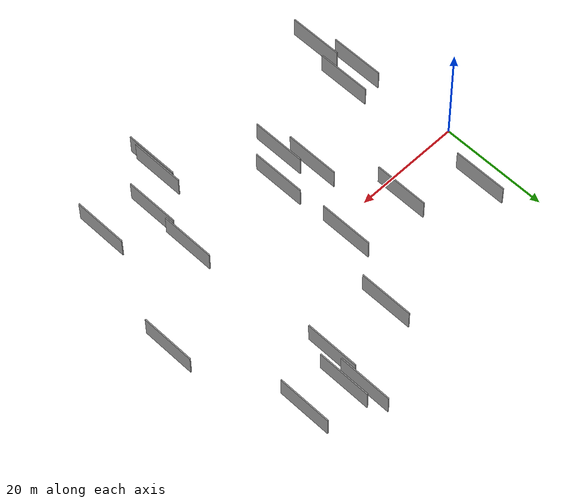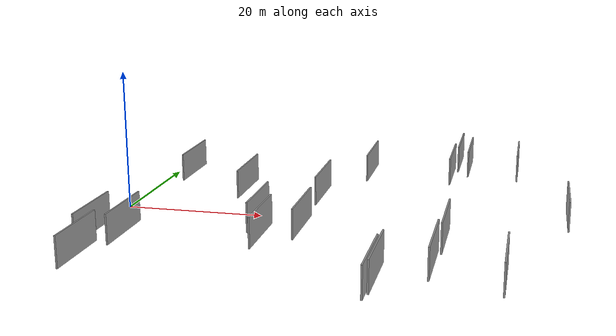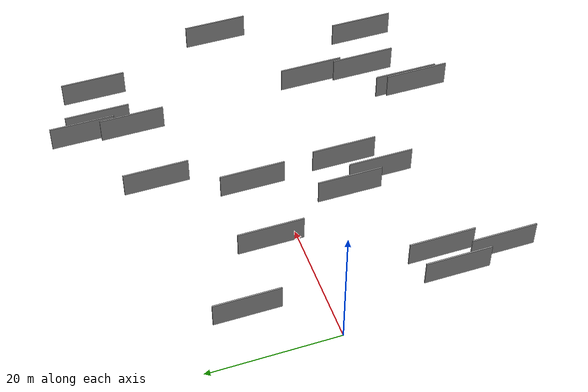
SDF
<sdf version="1.6">
 <world name="default">
  <scene>
   <sky><clouds><speed>12</speed></clouds></sky>
   <ambient>0.4 0.4 0.4 1</ambient>
   <background>0.7 0.7 0.7 1</background>
   <shadows>1</shadows>
  </scene>
  <gravity>0 0 -9.8066</gravity>
  <magnetic_field>6e-06 2.3e-05 -4.2e-05</magnetic_field>
  <physics default="0" name="default_physics" type="ode">
   <ode>
    <solver>
     <type>quick</type>
     <iters>10</iters>
     <sor>1.0</sor>
     <use_dynamic_moi_rescaling>0</use_dynamic_moi_rescaling>
    </solver>
    <constraints>
     <cfm>0</cfm>
     <erp>0.2</erp>
     <contact_max_correcting_vel>100</contact_max_correcting_vel>
     <contact_surface_layer>0.001</contact_surface_layer>
    </constraints>
   </ode>
   <max_step_size>0.004</max_step_size>
   <real_time_factor>1</real_time_factor>
   <real_time_update_rate>250</real_time_update_rate>
  </physics>
  <light name="sun" type="directional">
   <pose>0 0 10 0 0 0</pose>
   <diffuse>0.8 0.8 0.8 1</diffuse>
   <specular>0.2 0.2 0.2 1</specular>
   <attenuation>
    <range>1000</range>
    <constant>0.9</constant>
    <linear>0.01</linear>
    <quadratic>0.001</quadratic>
   </attenuation>
   <direction>-0.5 0.1 -0.9</direction>
  </light>
  <model name="grey_wall_1">
   <static>1</static>
   <pose>40.9652 -26.0209 2.5 0.000000 0.000000 1.570796</pose>
   <link name="link">
    <pose>0 0 2.00 0 0 0</pose>
    <collision name="collision"><geometry><box><size>10.00 0.2 4.00</size></box></geometry></collision>
    <visual name="visual">
     <cast_shadows>0</cast_shadows>
     <geometry><box><size>10.00 0.2 4.00</size></box></geometry>
     <material>
      <script>
       <uri>model://grey_wall/materials/scripts</uri>
       <uri>model://grey_wall/materials/textures</uri>
       <name>vrc/grey_wall</name>
      </script>
     </material>
    </visual>
   </link>
  </model>
  <model name="grey_wall_2">
   <static>1</static>
   <pose>7.0348 -17.4447 2.5 0.000000 0.000000 1.570796</pose>
   <link name="link">
    <pose>0 0 2.00 0 0 0</pose>
    <collision name="collision"><geometry><box><size>10.00 0.2 4.00</size></box></geometry></collision>
    <visual name="visual">
     <cast_shadows>0</cast_shadows>
     <geometry><box><size>10.00 0.2 4.00</size></box></geometry>
     <material>
      <script>
       <uri>model://grey_wall/materials/scripts</uri>
       <uri>model://grey_wall/materials/textures</uri>
       <name>vrc/grey_wall</name>
      </script>
     </material>
    </visual>
   </link>
  </model>
  <model name="grey_wall_3">
   <static>1</static>
   <pose>28.2016 3.8458 2.5 0.000000 0.000000 1.570796</pose>
   <link name="link">
    <pose>0 0 2.00 0 0 0</pose>
    <collision name="collision"><geometry><box><size>10.00 0.2 4.00</size></box></geometry></collision>
    <visual name="visual">
     <cast_shadows>0</cast_shadows>
     <geometry><box><size>10.00 0.2 4.00</size></box></geometry>
     <material>
      <script>
       <uri>model://grey_wall/materials/scripts</uri>
       <uri>model://grey_wall/materials/textures</uri>
       <name>vrc/grey_wall</name>
      </script>
     </material>
    </visual>
   </link>
  </model>
  <model name="grey_wall_4">
   <static>1</static>
   <pose>47.8252 22.6792 2.5 0.000000 0.000000 1.570796</pose>
   <link name="link">
    <pose>0 0 2.00 0 0 0</pose>
    <collision name="collision"><geometry><box><size>10.00 0.2 4.00</size></box></geometry></collision>
    <visual name="visual">
     <cast_shadows>0</cast_shadows>
     <geometry><box><size>10.00 0.2 4.00</size></box></geometry>
     <material>
      <script>
       <uri>model://grey_wall/materials/scripts</uri>
       <uri>model://grey_wall/materials/textures</uri>
       <name>vrc/grey_wall</name>
      </script>
     </material>
    </visual>
   </link>
  </model>
  <model name="grey_wall_5">
   <static>1</static>
   <pose>55.2218 21.6221 2.5 0.000000 0.000000 1.570796</pose>
   <link name="link">
    <pose>0 0 2.00 0 0 0</pose>
    <collision name="collision"><geometry><box><size>10.00 0.2 4.00</size></box></geometry></collision>
    <visual name="visual">
     <cast_shadows>0</cast_shadows>
     <geometry><box><size>10.00 0.2 4.00</size></box></geometry>
     <material>
      <script>
       <uri>model://grey_wall/materials/scripts</uri>
       <uri>model://grey_wall/materials/textures</uri>
       <name>vrc/grey_wall</name>
      </script>
     </material>
    </visual>
   </link>
  </model>
  <model name="grey_wall_6">
   <static>1</static>
   <pose>46.8211 -20.9264 2.5 0.000000 0.000000 1.570796</pose>
   <link name="link">
    <pose>0 0 2.00 0 0 0</pose>
    <collision name="collision"><geometry><box><size>10.00 0.2 4.00</size></box></geometry></collision>
    <visual name="visual">
     <cast_shadows>0</cast_shadows>
     <geometry><box><size>10.00 0.2 4.00</size></box></geometry>
     <material>
      <script>
       <uri>model://grey_wall/materials/scripts</uri>
       <uri>model://grey_wall/materials/textures</uri>
       <name>vrc/grey_wall</name>
      </script>
     </material>
    </visual>
   </link>
  </model>
  <model name="grey_wall_7">
   <static>1</static>
   <pose>3.1076 -18.2592 2.5 0.000000 0.000000 1.570796</pose>
   <link name="link">
    <pose>0 0 2.00 0 0 0</pose>
    <collision name="collision"><geometry><box><size>10.00 0.2 4.00</size></box></geometry></collision>
    <visual name="visual">
     <cast_shadows>0</cast_shadows>
     <geometry><box><size>10.00 0.2 4.00</size></box></geometry>
     <material>
      <script>
       <uri>model://grey_wall/materials/scripts</uri>
       <uri>model://grey_wall/materials/textures</uri>
       <name>vrc/grey_wall</name>
      </script>
     </material>
    </visual>
   </link>
  </model>
  <model name="grey_wall_8">
   <static>1</static>
   <pose>45.4688 17.8101 2.5 0.000000 0.000000 1.570796</pose>
   <link name="link">
    <pose>0 0 2.00 0 0 0</pose>
    <collision name="collision"><geometry><box><size>10.00 0.2 4.00</size></box></geometry></collision>
    <visual name="visual">
     <cast_shadows>0</cast_shadows>
     <geometry><box><size>10.00 0.2 4.00</size></box></geometry>
     <material>
      <script>
       <uri>model://grey_wall/materials/scripts</uri>
       <uri>model://grey_wall/materials/textures</uri>
       <name>vrc/grey_wall</name>
      </script>
     </material>
    </visual>
   </link>
  </model>
  <model name="grey_wall_9">
   <static>1</static>
   <pose>33.0896 17.2999 2.5 0.000000 0.000000 1.570796</pose>
   <link name="link">
    <pose>0 0 2.00 0 0 0</pose>
    <collision name="collision"><geometry><box><size>10.00 0.2 4.00</size></box></geometry></collision>
    <visual name="visual">
     <cast_shadows>0</cast_shadows>
     <geometry><box><size>10.00 0.2 4.00</size></box></geometry>
     <material>
      <script>
       <uri>model://grey_wall/materials/scripts</uri>
       <uri>model://grey_wall/materials/textures</uri>
       <name>vrc/grey_wall</name>
      </script>
     </material>
    </visual>
   </link>
  </model>
  <model name="grey_wall_10">
   <static>1</static>
   <pose>4.9232 -26.0384 2.5 0.000000 0.000000 1.570796</pose>
   <link name="link">
    <pose>0 0 2.00 0 0 0</pose>
    <collision name="collision"><geometry><box><size>10.00 0.2 4.00</size></box></geometry></collision>
    <visual name="visual">
     <cast_shadows>0</cast_shadows>
     <geometry><box><size>10.00 0.2 4.00</size></box></geometry>
     <material>
      <script>
       <uri>model://grey_wall/materials/scripts</uri>
       <uri>model://grey_wall/materials/textures</uri>
       <name>vrc/grey_wall</name>
      </script>
     </material>
    </visual>
   </link>
  </model>
  <model name="grey_wall_11">
   <static>1</static>
   <pose>28.6940 -10.8225 2.5 0.000000 0.000000 1.570796</pose>
   <link name="link">
    <pose>0 0 2.00 0 0 0</pose>
    <collision name="collision"><geometry><box><size>10.00 0.2 4.00</size></box></geometry></collision>
    <visual name="visual">
     <cast_shadows>0</cast_shadows>
     <geometry><box><size>10.00 0.2 4.00</size></box></geometry>
     <material>
      <script>
       <uri>model://grey_wall/materials/scripts</uri>
       <uri>model://grey_wall/materials/textures</uri>
       <name>vrc/grey_wall</name>
      </script>
     </material>
    </visual>
   </link>
  </model>
  <model name="grey_wall_12">
   <static>1</static>
   <pose>24.4220 -15.0903 2.5 0.000000 0.000000 1.570796</pose>
   <link name="link">
    <pose>0 0 2.00 0 0 0</pose>
    <collision name="collision"><geometry><box><size>10.00 0.2 4.00</size></box></geometry></collision>
    <visual name="visual">
     <cast_shadows>0</cast_shadows>
     <geometry><box><size>10.00 0.2 4.00</size></box></geometry>
     <material>
      <script>
       <uri>model://grey_wall/materials/scripts</uri>
       <uri>model://grey_wall/materials/textures</uri>
       <name>vrc/grey_wall</name>
      </script>
     </material>
    </visual>
   </link>
  </model>
  <model name="grey_wall_13">
   <static>1</static>
   <pose>62.3670 -0.7119 2.5 0.000000 0.000000 1.570796</pose>
   <link name="link">
    <pose>0 0 2.00 0 0 0</pose>
    <collision name="collision"><geometry><box><size>10.00 0.2 4.00</size></box></geometry></collision>
    <visual name="visual">
     <cast_shadows>0</cast_shadows>
     <geometry><box><size>10.00 0.2 4.00</size></box></geometry>
     <material>
      <script>
       <uri>model://grey_wall/materials/scripts</uri>
       <uri>model://grey_wall/materials/textures</uri>
       <name>vrc/grey_wall</name>
      </script>
     </material>
    </visual>
   </link>
  </model>
  <model name="grey_wall_14">
   <static>1</static>
   <pose>5.7523 11.8680 2.5 0.000000 0.000000 1.570796</pose>
   <link name="link">
    <pose>0 0 2.00 0 0 0</pose>
    <collision name="collision"><geometry><box><size>10.00 0.2 4.00</size></box></geometry></collision>
    <visual name="visual">
     <cast_shadows>0</cast_shadows>
     <geometry><box><size>10.00 0.2 4.00</size></box></geometry>
     <material>
      <script>
       <uri>model://grey_wall/materials/scripts</uri>
       <uri>model://grey_wall/materials/textures</uri>
       <name>vrc/grey_wall</name>
      </script>
     </material>
    </visual>
   </link>
  </model>
  <model name="grey_wall_15">
   <static>1</static>
   <pose>46.1220 25.4278 2.5 0.000000 0.000000 1.570796</pose>
   <link name="link">
    <pose>0 0 2.00 0 0 0</pose>
    <collision name="collision"><geometry><box><size>10.00 0.2 4.00</size></box></geometry></collision>
    <visual name="visual">
     <cast_shadows>0</cast_shadows>
     <geometry><box><size>10.00 0.2 4.00</size></box></geometry>
     <material>
      <script>
       <uri>model://grey_wall/materials/scripts</uri>
       <uri>model://grey_wall/materials/textures</uri>
       <name>vrc/grey_wall</name>
      </script>
     </material>
    </visual>
   </link>
  </model>
  <model name="grey_wall_16">
   <static>1</static>
   <pose>47.3411 -12.2301 2.5 0.000000 0.000000 1.570796</pose>
   <link name="link">
    <pose>0 0 2.00 0 0 0</pose>
    <collision name="collision"><geometry><box><size>10.00 0.2 4.00</size></box></geometry></collision>
    <visual name="visual">
     <cast_shadows>0</cast_shadows>
     <geometry><box><size>10.00 0.2 4.00</size></box></geometry>
     <material>
      <script>
       <uri>model://grey_wall/materials/scripts</uri>
       <uri>model://grey_wall/materials/textures</uri>
       <name>vrc/grey_wall</name>
      </script>
     </material>
    </visual>
   </link>
  </model>
  <model name="grey_wall_17">
   <static>1</static>
   <pose>55.1884 -23.8600 2.5 0.000000 0.000000 1.570796</pose>
   <link name="link">
    <pose>0 0 2.00 0 0 0</pose>
    <collision name="collision"><geometry><box><size>10.00 0.2 4.00</size></box></geometry></collision>
    <visual name="visual">
     <cast_shadows>0</cast_shadows>
     <geometry><box><size>10.00 0.2 4.00</size></box></geometry>
     <material>
      <script>
       <uri>model://grey_wall/materials/scripts</uri>
       <uri>model://grey_wall/materials/textures</uri>
       <name>vrc/grey_wall</name>
      </script>
     </material>
    </visual>
   </link>
  </model>
  <model name="grey_wall_18">
   <static>1</static>
   <pose>22.4075 -9.4460 2.5 0.000000 0.000000 1.570796</pose>
   <link name="link">
    <pose>0 0 2.00 0 0 0</pose>
    <collision name="collision"><geometry><box><size>10.00 0.2 4.00</size></box></geometry></collision>
    <visual name="visual">
     <cast_shadows>0</cast_shadows>
     <geometry><box><size>10.00 0.2 4.00</size></box></geometry>
     <material>
      <script>
       <uri>model://grey_wall/materials/scripts</uri>
       <uri>model://grey_wall/materials/textures</uri>
       <name>vrc/grey_wall</name>
      </script>
     </material>
    </visual>
   </link>
  </model>
  <model name="grey_wall_19">
   <static>1</static>
   <pose>16.6373 4.8279 2.5 0.000000 0.000000 1.570796</pose>
   <link name="link">
    <pose>0 0 2.00 0 0 0</pose>
    <collision name="collision"><geometry><box><size>10.00 0.2 4.00</size></box></geometry></collision>
    <visual name="visual">
     <cast_shadows>0</cast_shadows>
     <geometry><box><size>10.00 0.2 4.00</size></box></geometry>
     <material>
      <script>
       <uri>model://grey_wall/materials/scripts</uri>
       <uri>model://grey_wall/materials/textures</uri>
       <name>vrc/grey_wall</name>
      </script>
     </material>
    </visual>
   </link>
  </model>
  <model name="grey_wall_20">
   <static>1</static>
   <pose>40.5881 -27.7302 2.5 0.000000 0.000000 1.570796</pose>
   <link name="link">
    <pose>0 0 2.00 0 0 0</pose>
    <collision name="collision"><geometry><box><size>10.00 0.2 4.00</size></box></geometry></collision>
    <visual name="visual">
     <cast_shadows>0</cast_shadows>
     <geometry><box><size>10.00 0.2 4.00</size></box></geometry>
     <material>
      <script>
       <uri>model://grey_wall/materials/scripts</uri>
       <uri>model://grey_wall/materials/textures</uri>
       <name>vrc/grey_wall</name>
      </script>
     </material>
    </visual>
   </link>
  </model>
 </world>
</sdf>
